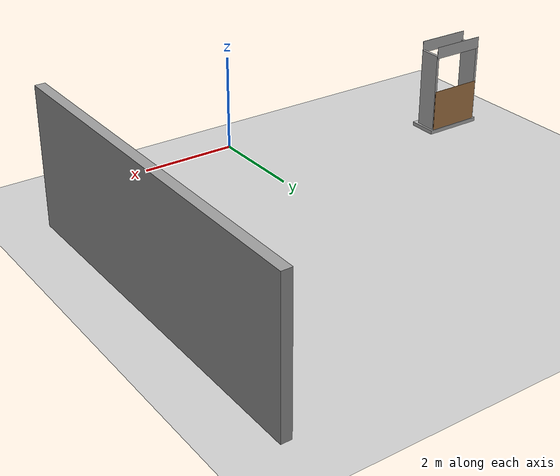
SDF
<sdf version="1.6">
 <world name="default">
  <light name="sun" type="directional">
   <pose>0 0 10 0 -0 0</pose>
   <diffuse>0.8 0.8 0.8 1</diffuse>
   <specular>0.1 0.1 0.1 1</specular>
   <attenuation>
    <range>1000</range>
    <constant>0.9</constant>
    <linear>0.01</linear>
    <quadratic>0.001</quadratic>
   </attenuation>
   <direction>-0.5 0.5 -1</direction>
  </light>
  <model name="ground_plane">
   <static>1</static>
   <link name="link">
    <collision name="collision">
     <geometry><plane><normal>0 0 1</normal><size>100 100</size></plane></geometry>
     <surface><friction><ode><mu>100</mu><mu2>50</mu2></ode></friction></surface>
    </collision>
    <visual name="visual">
     <cast_shadows>0</cast_shadows>
     <geometry><plane><normal>0 0 1</normal><size>100 100</size></plane></geometry>
     <material>
      <script><uri>file://media/materials/scripts/gazebo.material</uri><name>Gazebo/Grey</name></script>
     </material>
    </visual>
   </link>
  </model>
  <gravity>0 0 -9.8</gravity>
  <magnetic_field>6e-06 2.3e-05 -4.2e-05</magnetic_field>
  <atmosphere type="adiabatic"/>
  <physics name="default_physics" default="0" type="ode">
   <max_step_size>0.001</max_step_size>
   <real_time_factor>1</real_time_factor>
   <real_time_update_rate>1000</real_time_update_rate>
  </physics>
  <scene><ambient>0.4 0.4 0.4 1</ambient><background>0.7 0.7 0.7 1</background><shadows>1</shadows></scene>
  <spherical_coordinates>
   <surface_model>EARTH_WGS84</surface_model>
   <latitude_deg>0</latitude_deg>
   <longitude_deg>0</longitude_deg>
   <elevation>0</elevation>
   <heading_deg>0</heading_deg>
  </spherical_coordinates>
  <model name="frc2016_drawbridge">
   <link name="base">
    <inertial>
     <mass>10</mass>
     <pose>0 0 1 0 -0 0</pose>
     <inertia><ixx>3.64907</ixx><ixy>0</ixy><ixz>0</ixz><iyy>4.67075</iyy><iyz>0</iyz><izz>1.66649</izz></inertia>
    </inertial>
    <visual name="platform">
     <pose>0 0 0.0425 0 -0 0</pose>
     <geometry><box><size>1.27 0.5969 0.085</size></box></geometry>
    </visual>
    <collision name="platform">
     <pose>0 0 0.0425 0 -0 0</pose>
     <geometry><box><size>1.27 0.5969 0.085</size></box></geometry>
    </collision>
    <visual name="right_wall">
     <pose>0.55879 0.04444 0.889 0 -0 0</pose>
     <geometry><box><size>0.05715 0.45698 1.77165</size></box></geometry>
    </visual>
    <collision name="right_wall">
     <pose>0.55879 0.04444 0.889 0 -0 0</pose>
     <geometry><box><size>0.05715 0.45698 1.77165</size></box></geometry>
    </collision>
    <visual name="left_wall">
     <pose>-0.55879 0.04444 0.889 0 -0 0</pose>
     <geometry><box><size>0.05715 0.45698 1.77165</size></box></geometry>
    </visual>
    <collision name="left_wall">
     <pose>-0.55879 0.04444 0.889 0 -0 0</pose>
     <geometry><box><size>0.05715 0.45698 1.77165</size></box></geometry>
    </collision>
    <visual name="front_upper_wall">
     <pose>0 0.27611 1.84286 0 -0 0</pose>
     <geometry><box><size>1.1557 0.006347 0.254</size></box></geometry>
    </visual>
    <collision name="front_upper_wall">
     <pose>0 0.27611 1.84286 0 -0 0</pose>
     <geometry><box><size>1.1557 0.006347 0.254</size></box></geometry>
    </collision>
    <visual name="back_upper_wall">
     <pose>0 -0.18722 1.84286 0 -0 0</pose>
     <geometry><box><size>1.1557 0.006347 0.254</size></box></geometry>
    </visual>
    <collision name="back_upper_wall">
     <pose>0 -0.18722 1.84286 0 -0 0</pose>
     <geometry><box><size>1.1557 0.006347 0.254</size></box></geometry>
    </collision>
   </link>
   <link name="bridge">
    <pose>0 0.28245 0.50577 0 -0 0</pose>
    <inertial>
     <mass>2</mass>
     <pose>0 -0.28245 -0.50577 0 -0 0</pose>
     <inertia>
      <ixx>0.139361</ixx>
      <ixy>0</ixy>
      <ixz>0</ixz>
      <iyy>0.357088</iyy>
      <iyz>0</iyz>
      <izz>0.217741</izz>
     </inertia>
    </inertial>
    <visual name="visual">
     <geometry><box><size>1.14298 0.006347 0.9144</size></box></geometry>
     <material><script><name>Gazebo/WoodFloor</name><uri>__default__</uri></script></material>
    </visual>
    <collision name="collision"><geometry><box><size>1.14298 0.006347 0.9144</size></box></geometry></collision>
   </link>
   <joint name="bridge_joint" type="revolute">
    <pose>0 0 -0.4172 0 -0 0</pose>
    <parent>base</parent>
    <child>bridge</child>
    <axis>
     <xyz>1 0 0</xyz>
     <limit><lower>-2</lower><upper>0</upper></limit>
     <use_parent_model_frame>0</use_parent_model_frame>
     <dynamics><spring_reference>0</spring_reference><spring_stiffness>0</spring_stiffness></dynamics>
    </axis>
   </joint>
   <pose>-4.5516 1.67595 -3e-06 2e-06 -4e-06 0.004203</pose>
  </model>
  <model name="grey_wall_0">
   <link name="link">
    <pose>0 0 1.4 0 -0 0</pose>
    <inertial>
     <mass>1</mass>
     <pose>0 0 0 0 -0 1.57</pose>
     <inertia><ixx>1</ixx><ixy>0</ixy><ixz>0</ixz><iyy>1</iyy><iyz>0</iyz><izz>1</izz></inertia>
    </inertial>
    <visual name="visual">
     <cast_shadows>0</cast_shadows>
     <geometry><box><size>7.5 0.2 2.8</size></box></geometry>
     <material>
      <script>
       <uri>model://grey_wall/materials/scripts</uri>
       <uri>model://grey_wall/materials/textures</uri>
       <name>vrc/grey_wall</name>
      </script>
      <ambient>1 1 1 1</ambient>
      <diffuse>1 1 1 1</diffuse>
      <specular>0 0 0 1</specular>
      <emissive>0 0 0 1</emissive>
      <shader type="vertex"><normal_map>__default__</normal_map></shader>
     </material>
     <pose>0 0 0 0 -0 1.57</pose>
    </visual>
    <collision name="collision">
     <pose>0 0 0 0 -0 1.57</pose>
     <geometry><box><size>7.5 0.2 2.8</size></box></geometry>
     <surface>
      <friction>
       <ode><mu>1</mu><mu2>1</mu2><fdir1>0 0 0</fdir1><slip1>0</slip1><slip2>0</slip2></ode>
       <torsional>
        <coefficient>1</coefficient>
        <patch_radius>0</patch_radius>
        <surface_radius>0</surface_radius>
        <use_patch_radius>1</use_patch_radius>
        <ode><slip>0</slip></ode>
       </torsional>
      </friction>
      <bounce><restitution_coefficient>0</restitution_coefficient><threshold>1e+06</threshold></bounce>
      <contact>
       <collide_without_contact>0</collide_without_contact>
       <collide_without_contact_bitmask>1</collide_without_contact_bitmask>
       <collide_bitmask>1</collide_bitmask>
       <ode>
        <soft_cfm>0</soft_cfm>
        <soft_erp>0.2</soft_erp>
        <kp>1e+13</kp>
        <kd>1</kd>
        <max_vel>0.01</max_vel>
        <min_depth>0</min_depth>
       </ode>
       <bullet>
        <split_impulse>1</split_impulse>
        <split_impulse_penetration_threshold>-0.01</split_impulse_penetration_threshold>
        <soft_cfm>0</soft_cfm>
        <soft_erp>0.2</soft_erp>
        <kp>1e+13</kp>
        <kd>1</kd>
       </bullet>
      </contact>
     </surface>
    </collision>
   </link>
   <static>1</static>
   <pose>4.4791 4.71558 0 0 -0 0</pose>
  </model>
  <plugin name="ros_interface_plugin" filename="librotors_gazebo_ros_interface_plugin.so"/>
  <spherical_coordinates>
   <surface_model>EARTH_WGS84</surface_model>
   <latitude_deg>47.3667</latitude_deg>
   <longitude_deg>8.5500</longitude_deg>
   <elevation>500.0</elevation>
   <heading_deg>0</heading_deg>
  </spherical_coordinates>
  <physics type="ode">
   <ode>
    <solver><type>quick</type><iters>1000</iters><sor>1.3</sor></solver>
    <constraints>
     <cfm>0</cfm>
     <erp>0.2</erp>
     <contact_max_correcting_vel>100</contact_max_correcting_vel>
     <contact_surface_layer>0.001</contact_surface_layer>
    </constraints>
   </ode>
   <max_step_size>0.01</max_step_size>
   <real_time_factor>1</real_time_factor>
   <real_time_update_rate>100</real_time_update_rate>
   <gravity>0 0 -9.8</gravity>
  </physics>
 </world>
</sdf>
